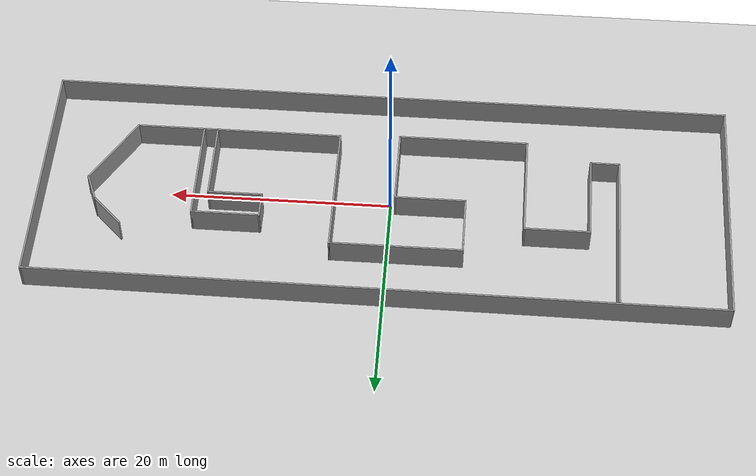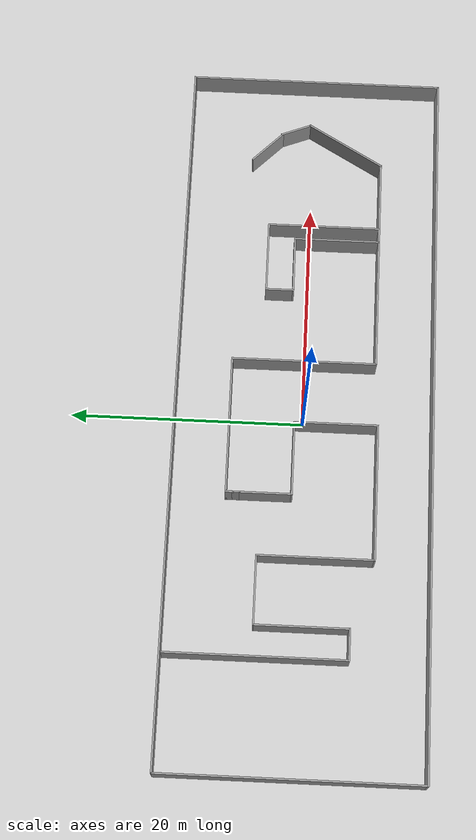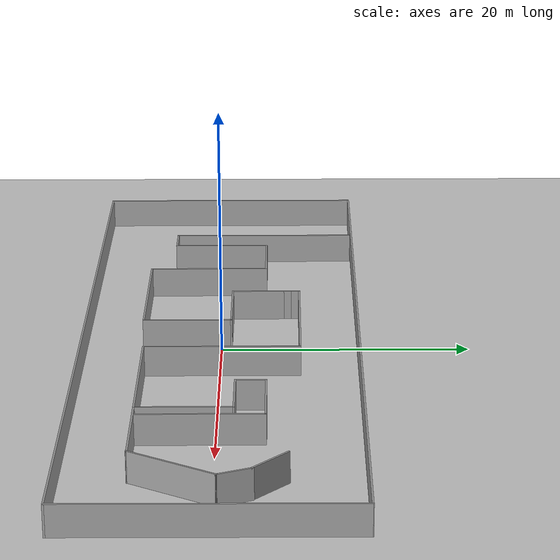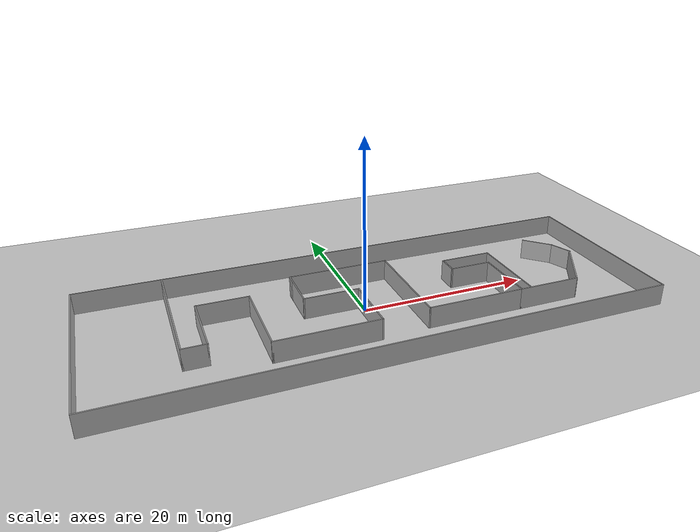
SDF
<sdf version="1.7">
 <world name="default">
  <light name="sun" type="directional">
   <pose>0 0 10 0 -0 0</pose>
   <diffuse>0.8 0.8 0.8 1</diffuse>
   <specular>0.2 0.2 0.2 1</specular>
   <attenuation>
    <range>1000</range>
    <constant>0.9</constant>
    <linear>0.01</linear>
    <quadratic>0.001</quadratic>
   </attenuation>
   <direction>-0.5 0.1 -0.9</direction>
   <spot><inner_angle>0</inner_angle><outer_angle>0</outer_angle><falloff>0</falloff></spot>
  </light>
  <model name="ground_plane">
   <static>1</static>
   <link name="link">
    <collision name="collision">
     <geometry><plane><normal>0 0 1</normal><size>100 100</size></plane></geometry>
     <surface><friction><ode><mu>100</mu><mu2>50</mu2></ode></friction></surface>
    </collision>
    <visual name="visual">
     <cast_shadows>0</cast_shadows>
     <geometry><plane><normal>0 0 1</normal><size>100 100</size></plane></geometry>
     <material>
      <script><uri>file://media/materials/scripts/gazebo.material</uri><name>Gazebo/Grey</name></script>
     </material>
    </visual>
   </link>
  </model>
  <gravity>0 0 -9.8</gravity>
  <magnetic_field>6e-06 2.3e-05 -4.2e-05</magnetic_field>
  <atmosphere type="adiabatic"/>
  <physics type="ode">
   <max_step_size>0.001</max_step_size>
   <real_time_factor>1</real_time_factor>
   <real_time_update_rate>1000</real_time_update_rate>
  </physics>
  <scene><ambient>0.4 0.4 0.4 1</ambient><background>0.7 0.7 0.7 1</background><shadows>1</shadows></scene>
  <spherical_coordinates>
   <surface_model>EARTH_WGS84</surface_model>
   <latitude_deg>0</latitude_deg>
   <longitude_deg>0</longitude_deg>
   <elevation>0</elevation>
   <heading_deg>0</heading_deg>
  </spherical_coordinates>
  <model name="Mouse_Trap_1.world">
   <pose>0.696801 0.063084 0 0 -0 0</pose>
   <link name="Wall_22">
    <collision name="Wall_22_Collision">
     <geometry><box><size>22.25 0.15 2.5</size></box></geometry>
     <pose>0 0 1.25 0 -0 0</pose>
    </collision>
    <visual name="Wall_22_Visual">
     <pose>0 0 1.25 0 -0 0</pose>
     <geometry><box><size>22.25 0.15 2.5</size></box></geometry>
     <material>
      <script><uri>file://media/materials/scripts/gazebo.material</uri><name>Gazebo/Grey</name></script>
      <ambient>1 1 1 1</ambient>
     </material>
     <meta><layer>0</layer></meta>
    </visual>
    <pose>-31.0831 0.005571 0 0 -0 -1.5708</pose>
   </link>
   <link name="Wall_23">
    <collision name="Wall_23_Collision">
     <geometry><box><size>62.2504 0.15 2.5</size></box></geometry>
     <pose>0 0 1.25 0 -0 0</pose>
    </collision>
    <visual name="Wall_23_Visual">
     <pose>0 0 1.25 0 -0 0</pose>
     <geometry><box><size>62.2504 0.15 2.5</size></box></geometry>
     <material>
      <script><uri>file://media/materials/scripts/gazebo.material</uri><name>Gazebo/Grey</name></script>
      <ambient>1 1 1 1</ambient>
     </material>
     <meta><layer>0</layer></meta>
    </visual>
    <pose>-0.033093 -11.0904 0 0 -0 0.00037</pose>
   </link>
   <link name="Wall_24">
    <collision name="Wall_24_Collision">
     <geometry><box><size>22.0001 0.15 2.5</size></box></geometry>
     <pose>0 0 1.25 0 -0 0</pose>
    </collision>
    <visual name="Wall_24_Visual">
     <pose>0 0 1.25 0 -0 0</pose>
     <geometry><box><size>22.0001 0.15 2.5</size></box></geometry>
     <material>
      <script><uri>file://media/materials/scripts/gazebo.material</uri><name>Gazebo/Grey</name></script>
      <ambient>1 1 1 1</ambient>
     </material>
     <meta><layer>0</layer></meta>
    </visual>
    <pose>31.05 -0.087812 0 0 -0 1.56777</pose>
   </link>
   <link name="Wall_25">
    <collision name="Wall_25_Collision">
     <geometry><box><size>62.2506 0.15 2.5</size></box></geometry>
     <pose>0 0 1.25 0 -0 0</pose>
    </collision>
    <visual name="Wall_25_Visual">
     <pose>0 0 1.25 0 -0 0</pose>
     <geometry><box><size>62.2506 0.15 2.5</size></box></geometry>
     <material>
      <script><uri>file://media/materials/scripts/gazebo.material</uri><name>Gazebo/Grey</name></script>
      <ambient>1 1 1 1</ambient>
     </material>
     <meta><layer>0</layer></meta>
    </visual>
    <pose>0.033016 10.9694 0 0 -0 3.13733</pose>
   </link>
   <link name="Wall_27">
    <collision name="Wall_27_Collision">
     <geometry><box><size>15.5 0.15 2.5</size></box></geometry>
     <pose>0 0 1.25 0 -0 0</pose>
    </collision>
    <visual name="Wall_27_Visual">
     <pose>0 0 1.25 0 -0 0</pose>
     <geometry><box><size>15.5 0.15 2.5</size></box></geometry>
     <material>
      <script><uri>file://media/materials/scripts/gazebo.material</uri><name>Gazebo/Grey</name></script>
      <ambient>1 1 1 1</ambient>
     </material>
     <meta><layer>0</layer></meta>
    </visual>
    <pose>-21.314 3.18381 0 0 -0 -1.5708</pose>
   </link>
   <link name="Wall_28">
    <collision name="Wall_28_Collision">
     <geometry><box><size>2.75 0.15 2.5</size></box></geometry>
     <pose>0 0 1.25 0 -0 0</pose>
    </collision>
    <visual name="Wall_28_Visual">
     <pose>0 0 1.25 0 -0 0</pose>
     <geometry><box><size>2.75 0.15 2.5</size></box></geometry>
     <material>
      <script><uri>file://media/materials/scripts/gazebo.material</uri><name>Gazebo/Grey</name></script>
      <ambient>1 1 1 1</ambient>
     </material>
     <meta><layer>0</layer></meta>
    </visual>
    <pose>-20.014 -4.49119 0 0 -0 0</pose>
   </link>
   <link name="Wall_29">
    <collision name="Wall_29_Collision">
     <geometry><box><size>8 0.15 2.5</size></box></geometry>
     <pose>0 0 1.25 0 -0 0</pose>
    </collision>
    <visual name="Wall_29_Visual">
     <pose>0 0 1.25 0 -0 0</pose>
     <geometry><box><size>8 0.15 2.5</size></box></geometry>
     <material>
      <script><uri>file://media/materials/scripts/gazebo.material</uri><name>Gazebo/Grey</name></script>
      <ambient>1 1 1 1</ambient>
     </material>
     <meta><layer>0</layer></meta>
    </visual>
    <pose>-18.714 -0.56619 0 0 -0 1.5708</pose>
   </link>
   <link name="Wall_31">
    <collision name="Wall_31_Collision">
     <geometry><box><size>6 0.15 2.5</size></box></geometry>
     <pose>0 0 1.25 0 -0 0</pose>
    </collision>
    <visual name="Wall_31_Visual">
     <pose>0 0 1.25 0 -0 0</pose>
     <geometry><box><size>6 0.15 2.5</size></box></geometry>
     <material>
      <script><uri>file://media/materials/scripts/gazebo.material</uri><name>Gazebo/Grey</name></script>
      <ambient>1 1 1 1</ambient>
     </material>
     <meta><layer>0</layer></meta>
    </visual>
    <pose>-15.789 3.45881 0 0 -0 0</pose>
   </link>
   <link name="Wall_32">
    <collision name="Wall_32_Collision">
     <geometry><box><size>10 0.15 2.5</size></box></geometry>
     <pose>0 0 1.25 0 -0 0</pose>
    </collision>
    <visual name="Wall_32_Visual">
     <pose>0 0 1.25 0 -0 0</pose>
     <geometry><box><size>10 0.15 2.5</size></box></geometry>
     <material>
      <script><uri>file://media/materials/scripts/gazebo.material</uri><name>Gazebo/Grey</name></script>
      <ambient>1 1 1 1</ambient>
     </material>
     <meta><layer>0</layer></meta>
    </visual>
    <pose>-12.864 -1.46619 0 0 -0 -1.5708</pose>
   </link>
   <link name="Wall_33">
    <collision name="Wall_33_Collision">
     <geometry><box><size>11.75 0.15 2.5</size></box></geometry>
     <pose>0 0 1.25 0 -0 0</pose>
    </collision>
    <visual name="Wall_33_Visual">
     <pose>0 0 1.25 0 -0 0</pose>
     <geometry><box><size>11.75 0.15 2.5</size></box></geometry>
     <material>
      <script><uri>file://media/materials/scripts/gazebo.material</uri><name>Gazebo/Grey</name></script>
      <ambient>1 1 1 1</ambient>
     </material>
     <meta><layer>0</layer></meta>
    </visual>
    <pose>-7.06404 -6.39119 0 0 -0 0</pose>
   </link>
   <link name="Wall_35">
    <collision name="Wall_35_Collision">
     <geometry><box><size>7.25 0.15 2.5</size></box></geometry>
     <pose>0 0 1.25 0 -0 0</pose>
    </collision>
    <visual name="Wall_35_Visual">
     <pose>0 0 1.25 0 -0 0</pose>
     <geometry><box><size>7.25 0.15 2.5</size></box></geometry>
     <material>
      <script><uri>file://media/materials/scripts/gazebo.material</uri><name>Gazebo/Grey</name></script>
      <ambient>1 1 1 1</ambient>
     </material>
     <meta><layer>0</layer></meta>
    </visual>
    <pose>-1.16404 -2.84119 0 0 -0 1.5708</pose>
   </link>
   <link name="Wall_36">
    <collision name="Wall_36_Collision">
     <geometry><box><size>6.5 0.15 2.5</size></box></geometry>
     <pose>0 0 1.25 0 -0 0</pose>
    </collision>
    <visual name="Wall_36_Visual">
     <pose>0 0 1.25 0 -0 0</pose>
     <geometry><box><size>6.5 0.15 2.5</size></box></geometry>
     <material>
      <script><uri>file://media/materials/scripts/gazebo.material</uri><name>Gazebo/Grey</name></script>
      <ambient>1 1 1 1</ambient>
     </material>
     <meta><layer>0</layer></meta>
    </visual>
    <pose>-4.33904 0.70881 0 0 -0 3.14159</pose>
   </link>
   <link name="Wall_37">
    <collision name="Wall_37_Collision">
     <geometry><box><size>4.5 0.15 2.5</size></box></geometry>
     <pose>0 0 1.25 0 -0 0</pose>
    </collision>
    <visual name="Wall_37_Visual">
     <pose>0 0 1.25 0 -0 0</pose>
     <geometry><box><size>4.5 0.15 2.5</size></box></geometry>
     <material>
      <script><uri>file://media/materials/scripts/gazebo.material</uri><name>Gazebo/Grey</name></script>
      <ambient>1 1 1 1</ambient>
     </material>
     <meta><layer>0</layer></meta>
    </visual>
    <pose>-7.51404 2.88381 0 0 -0 1.5708</pose>
   </link>
   <link name="Wall_38">
    <collision name="Wall_38_Collision">
     <geometry><box><size>0.75 0.15 2.5</size></box></geometry>
     <pose>0 0 1.25 0 -0 0</pose>
    </collision>
    <visual name="Wall_38_Visual">
     <pose>0 0 1.25 0 -0 0</pose>
     <geometry><box><size>0.75 0.15 2.5</size></box></geometry>
     <material>
      <script><uri>file://media/materials/scripts/gazebo.material</uri><name>Gazebo/Grey</name></script>
      <ambient>1 1 1 1</ambient>
     </material>
     <meta><layer>0</layer></meta>
    </visual>
    <pose>-7.51404 5.35881 0 0 -0 1.5708</pose>
   </link>
   <link name="Wall_39">
    <collision name="Wall_39_Collision">
     <geometry><box><size>0.75 0.15 2.5</size></box></geometry>
     <pose>0 0 1.25 0 -0 0</pose>
    </collision>
    <visual name="Wall_39_Visual">
     <pose>0 0 1.25 0 -0 0</pose>
     <geometry><box><size>0.75 0.15 2.5</size></box></geometry>
     <material>
      <script><uri>file://media/materials/scripts/gazebo.material</uri><name>Gazebo/Grey</name></script>
      <ambient>1 1 1 1</ambient>
     </material>
     <meta><layer>0</layer></meta>
    </visual>
    <pose>-7.51404 5.95881 0 0 -0 1.5708</pose>
   </link>
   <link name="Wall_40">
    <collision name="Wall_40_Collision">
     <geometry><box><size>12 0.15 2.5</size></box></geometry>
     <pose>0 0 1.25 0 -0 0</pose>
    </collision>
    <visual name="Wall_40_Visual">
     <pose>0 0 1.25 0 -0 0</pose>
     <geometry><box><size>12 0.15 2.5</size></box></geometry>
     <material>
      <script><uri>file://media/materials/scripts/gazebo.material</uri><name>Gazebo/Grey</name></script>
      <ambient>1 1 1 1</ambient>
     </material>
     <meta><layer>0</layer></meta>
    </visual>
    <pose>-1.58904 6.25881 0 0 -0 0</pose>
   </link>
   <link name="Wall_41">
    <collision name="Wall_41_Collision">
     <geometry><box><size>12.5 0.15 2.5</size></box></geometry>
     <pose>0 0 1.25 0 -0 0</pose>
    </collision>
    <visual name="Wall_41_Visual">
     <pose>0 0 1.25 0 -0 0</pose>
     <geometry><box><size>12.5 0.15 2.5</size></box></geometry>
     <material>
      <script><uri>file://media/materials/scripts/gazebo.material</uri><name>Gazebo/Grey</name></script>
      <ambient>1 1 1 1</ambient>
     </material>
     <meta><layer>0</layer></meta>
    </visual>
    <pose>4.33596 0.08381 0 0 -0 -1.5708</pose>
   </link>
   <link name="Wall_42">
    <collision name="Wall_42_Collision">
     <geometry><box><size>11.5 0.15 2.5</size></box></geometry>
     <pose>0 0 1.25 0 -0 0</pose>
    </collision>
    <visual name="Wall_42_Visual">
     <pose>0 0 1.25 0 -0 0</pose>
     <geometry><box><size>11.5 0.15 2.5</size></box></geometry>
     <material>
      <script><uri>file://media/materials/scripts/gazebo.material</uri><name>Gazebo/Grey</name></script>
      <ambient>1 1 1 1</ambient>
     </material>
     <meta><layer>0</layer></meta>
    </visual>
    <pose>10.011 -6.09119 0 0 -0 0</pose>
   </link>
   <link name="Wall_43">
    <collision name="Wall_43_Collision">
     <geometry><box><size>7.5 0.15 2.5</size></box></geometry>
     <pose>0 0 1.25 0 -0 0</pose>
    </collision>
    <visual name="Wall_43_Visual">
     <pose>0 0 1.25 0 -0 0</pose>
     <geometry><box><size>7.5 0.15 2.5</size></box></geometry>
     <material>
      <script><uri>file://media/materials/scripts/gazebo.material</uri><name>Gazebo/Grey</name></script>
      <ambient>1 1 1 1</ambient>
     </material>
     <meta><layer>0</layer></meta>
    </visual>
    <pose>15.686 -2.41619 0 0 -0 1.5708</pose>
   </link>
   <link name="Wall_44">
    <collision name="Wall_44_Collision">
     <geometry><box><size>5 0.15 2.5</size></box></geometry>
     <pose>0 0 1.25 0 -0 0</pose>
    </collision>
    <visual name="Wall_44_Visual">
     <pose>0 0 1.25 0 -0 0</pose>
     <geometry><box><size>5 0.15 2.5</size></box></geometry>
     <material>
      <script><uri>file://media/materials/scripts/gazebo.material</uri><name>Gazebo/Grey</name></script>
      <ambient>1 1 1 1</ambient>
     </material>
     <meta><layer>0</layer></meta>
    </visual>
    <pose>13.261 1.25881 0 0 -0 3.14159</pose>
   </link>
   <link name="Wall_45">
    <collision name="Wall_45_Collision">
     <geometry><box><size>2.5 0.15 2.5</size></box></geometry>
     <pose>0 0 1.25 0 -0 0</pose>
    </collision>
    <visual name="Wall_45_Visual">
     <pose>0 0 1.25 0 -0 0</pose>
     <geometry><box><size>2.5 0.15 2.5</size></box></geometry>
     <material>
      <script><uri>file://media/materials/scripts/gazebo.material</uri><name>Gazebo/Grey</name></script>
      <ambient>1 1 1 1</ambient>
     </material>
     <meta><layer>0</layer></meta>
    </visual>
    <pose>10.836 2.43381 0 0 -0 1.5708</pose>
   </link>
   <link name="Wall_46">
    <collision name="Wall_46_Collision">
     <geometry><box><size>6.25 0.15 2.5</size></box></geometry>
     <pose>0 0 1.25 0 -0 0</pose>
    </collision>
    <visual name="Wall_46_Visual">
     <pose>0 0 1.25 0 -0 0</pose>
     <geometry><box><size>6.25 0.15 2.5</size></box></geometry>
     <material>
      <script><uri>file://media/materials/scripts/gazebo.material</uri><name>Gazebo/Grey</name></script>
      <ambient>1 1 1 1</ambient>
     </material>
     <meta><layer>0</layer></meta>
    </visual>
    <pose>13.886 3.60881 0 0 -0 0</pose>
   </link>
   <link name="Wall_47">
    <collision name="Wall_47_Collision">
     <geometry><box><size>9.75 0.15 2.5</size></box></geometry>
     <pose>0 0 1.25 0 -0 0</pose>
    </collision>
    <visual name="Wall_47_Visual">
     <pose>0 0 1.25 0 -0 0</pose>
     <geometry><box><size>9.75 0.15 2.5</size></box></geometry>
     <material>
      <script><uri>file://media/materials/scripts/gazebo.material</uri><name>Gazebo/Grey</name></script>
      <ambient>1 1 1 1</ambient>
     </material>
     <meta><layer>0</layer></meta>
    </visual>
    <pose>16.936 -1.19119 0 0 -0 -1.5708</pose>
   </link>
   <link name="Wall_49">
    <collision name="Wall_49_Collision">
     <geometry><box><size>7.5 0.15 2.5</size></box></geometry>
     <pose>0 0 1.25 0 -0 0</pose>
    </collision>
    <visual name="Wall_49_Visual">
     <pose>0 0 1.25 0 -0 0</pose>
     <geometry><box><size>7.5 0.15 2.5</size></box></geometry>
     <material>
      <script><uri>file://media/materials/scripts/gazebo.material</uri><name>Gazebo/Grey</name></script>
      <ambient>1 1 1 1</ambient>
     </material>
     <meta><layer>0</layer></meta>
    </visual>
    <pose>19.361 -6.09119 0 0 -0 0</pose>
   </link>
   <link name="Wall_50">
    <collision name="Wall_50_Collision">
     <geometry><box><size>7.5 0.15 2.5</size></box></geometry>
     <pose>0 0 1.25 0 -0 0</pose>
    </collision>
    <visual name="Wall_50_Visual">
     <pose>0 0 1.25 0 -0 0</pose>
     <geometry><box><size>7.5 0.15 2.5</size></box></geometry>
     <material>
      <script><uri>file://media/materials/scripts/gazebo.material</uri><name>Gazebo/Grey</name></script>
      <ambient>1 1 1 1</ambient>
     </material>
     <meta><layer>0</layer></meta>
    </visual>
    <pose>24.8735 -2.90855 0 0 -0 1.0472</pose>
   </link>
   <link name="Wall_51">
    <collision name="Wall_51_Collision">
     <geometry><box><size>2.84443 0.15 2.5</size></box></geometry>
     <pose>0 0 1.25 0 -0 0</pose>
    </collision>
    <visual name="Wall_51_Visual">
     <pose>0 0 1.25 0 -0 0</pose>
     <geometry><box><size>2.84443 0.15 2.5</size></box></geometry>
     <material>
      <script><uri>file://media/materials/scripts/gazebo.material</uri><name>Gazebo/Grey</name></script>
      <ambient>1 1 1 1</ambient>
     </material>
     <meta><layer>0</layer></meta>
    </visual>
    <pose>26.2234 1.53 0 0 -0 1.94108</pose>
   </link>
   <link name="Wall_52">
    <collision name="Wall_52_Collision">
     <geometry><box><size>3.75 0.15 2.5</size></box></geometry>
     <pose>0 0 1.25 0 -0 0</pose>
    </collision>
    <visual name="Wall_52_Visual">
     <pose>0 0 1.25 0 -0 0</pose>
     <geometry><box><size>3.75 0.15 2.5</size></box></geometry>
     <material>
      <script><uri>file://media/materials/scripts/gazebo.material</uri><name>Gazebo/Grey</name></script>
      <ambient>1 1 1 1</ambient>
     </material>
     <meta><layer>0</layer></meta>
    </visual>
    <pose>24.4631 4.00122 0 0 -0 2.35619</pose>
   </link>
   <static>1</static>
  </model>
 </world>
</sdf>
